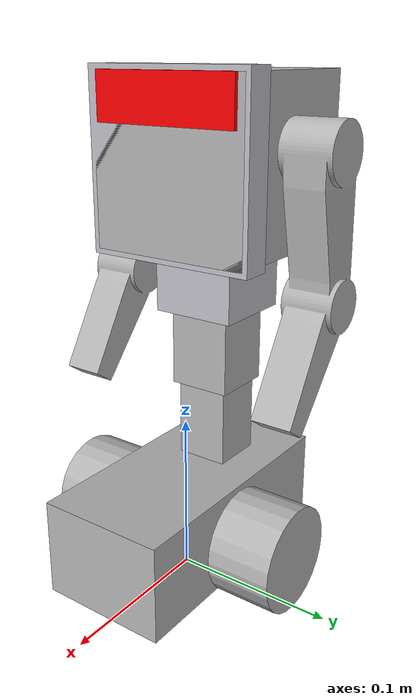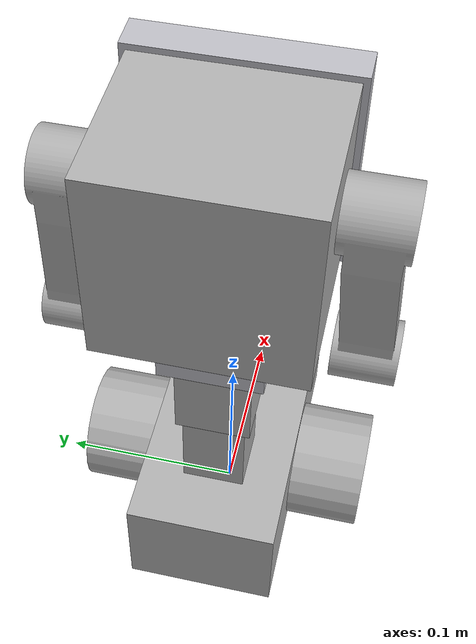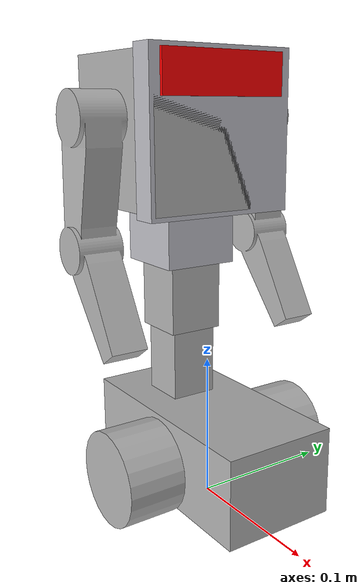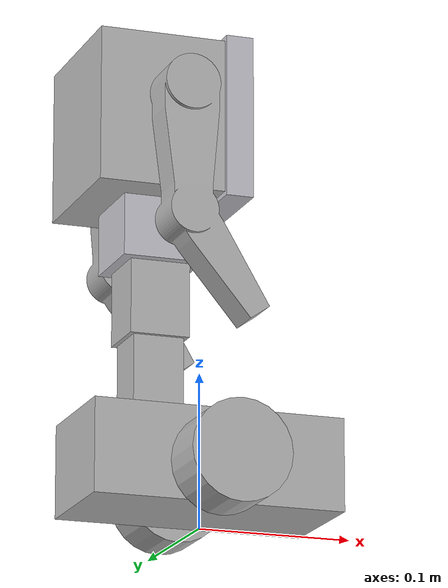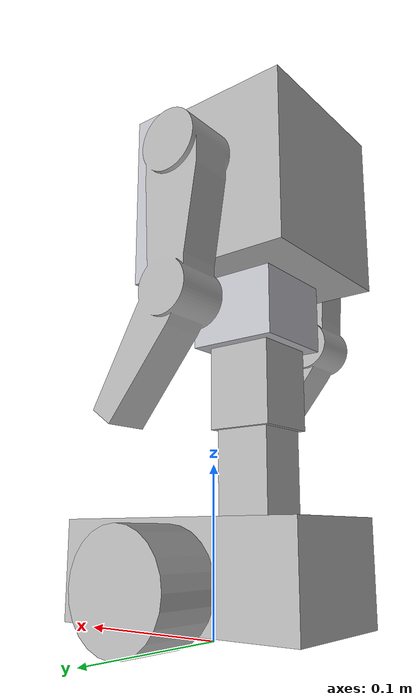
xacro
<?xml version="1.0" ?>
<robot name="ptbr" xmlns:xacro="http://www.ros.org/wiki/xacro">

<xacro:include filename="$(find ptbr)/urdf/materials.xacro" />
<xacro:include filename="$(find ptbr)/urdf/ptbr.ros2control" />
<xacro:include filename="$(find ptbr)/urdf/ptbr.gazebo" />

<xacro:include filename="$(find ptbr)/urdf/camera.xacro" />

<link name="base_footprint">

</link>

<joint name="base_link_joint" type="fixed">
  <origin xyz="0 0 0.0325"/>
  <parent link="base_footprint"/>
  <child link="base_link"/>

</joint>

<link name="base_link">
</link>

<joint name="base_joint" type="fixed">
  <parent link="base_link"/>
  <child link="base"/>
</joint>

<link name="base">
  <inertial>
    <origin xyz="0.006425674318858227 -0.00030771491577107806 0.038113735190444614" rpy="0 0 0"/>
    <mass value="10"/>
    <inertia ixx="0.018437" iyy="0.007171" izz="0.017545" ixy="0.0" iyz="-0.001397" ixz="-0.0"/>
  </inertial>
  <visual>
    <origin xyz="0 0 0.006" rpy="0 0 0"/>
    <geometry>
      <box size="0.1634 0.08 0.06"/>
    </geometry>
    <material name="silver"/>
  </visual>
  <visual>
    <origin xyz="-0.0327525 0.0 0.0575" rpy="0.0 0.0 0.0"/>
    <geometry>
      <box size="0.032895 0.032895 0.055"/>
    </geometry>
    <material name="silver"/>
  </visual>
  <collision>
    <origin xyz="0 0 0.006" rpy="0 0 0"/>
    <geometry>
      <box size="0.1634 0.08 0.06"/>
    </geometry>
    <material name="silver"/>
  </collision>
  <collision>
    <origin xyz="-0.0327525 0.0 0.0575" rpy="0.0 0.0 0.0"/>
    <geometry>
      <box size="0.032895 0.032895 0.055"/>
    </geometry>
    <material name="silver"/>
  </collision>
</link>

<joint name="head_joint" type="revolute">
  <origin xyz="-0.0327525 0 0.085" rpy="0 0 0"/>
  <parent link="base_link"/>
  <child link="head"/>
  <axis xyz="0.0 1.0 0.0"/>
  <limit upper="0.785399" lower="-0.785399" effort="100" velocity="100"/>
</joint>

<link name="head">
  <inertial>
    <origin xyz="2.850842288221471e-07 -0.001985837786485485 0.12158816571318953" rpy="0 0 0"/>
    <mass value="2"/>
    <inertia ixx="0.029478" iyy="0.029097" izz="0.015168" ixy="0.0" iyz="0.000325" ixz="-0.0"/>
  </inertial>
  <visual>
    <origin xyz="0 0 0.138" rpy="0 0 0"/>
    <geometry>
      <box size="0.1 0.1 0.1"/>
    </geometry>
    <material name="silver"/>
  </visual>

  <visual>
    <origin xyz="0.041 0 0.138" rpy="0.0 0.0 0.0"/>
    <geometry>
      <box size="0.018 0.106 0.106"/>
    </geometry>
  </visual>
  <visual>
    <origin xyz="0 0 0.024" rpy="0.0 0.0 0.0"/>
    <geometry>
      <box size="0.038895 0.038895 0.048"/>
    </geometry>
    <material name="silver"/>

  </visual>
  <visual>
    <origin xyz="0.0 0.0 0.068" rpy="0.0 0.0 0.0"/>
    <geometry>
      <box size="0.0525 0.0525 0.04"/>
    </geometry>
  </visual>
  <collision>
    <origin xyz="0 0 0.138" rpy="0 0 0"/>
    <geometry>
      <box size="0.1 0.1 0.1"/>
    </geometry>
  </collision>

  <collision>
    <origin xyz="0.041 0 0.138" rpy="0.0 0.0 0.0"/>
    <geometry>
      <box size="0.018 0.106 0.106"/>
    </geometry>
  </collision>
  <collision>
    <origin xyz="0 0 0.024" rpy="0.0 0.0 0.0"/>
    <geometry>
      <box size="0.038895 0.038895 0.048"/>
    </geometry>
  </collision>
  <collision>
    <origin xyz="0.0 0.0 0.068" rpy="0.0 0.0 0.0"/>
    <geometry>
      <box size="0.0525 0.0525 0.04"/>
    </geometry>
  </collision>
</link>

<joint name="right_wheel_joint" type="continuous">
  <origin xyz="0 -0.06 0" rpy="${pi/2} 0 0"/>
  <parent link="base_link"/>
  <child link="right_wheel"/>
  <axis xyz="0 0.0 -1"/>
  <limit effort="50000" velocity="10"/>
  <dynamics damping="1.0" friction="1.0"/>
</joint>

<link name="right_wheel">
  <inertial>
    <origin xyz="-0.019999714915771002 -2.0220914574015092e-07 2.2264549151551627e-07" rpy="0 0 0"/>
    <mass value="1"/>
    <inertia ixx="0.000659" iyy="0.000482" izz="0.000482" ixy="0.0" iyz="0.0" ixz="-0.0"/>
  </inertial>
  <visual>
    <origin xyz="0 0 0" rpy="0 0 0"/>
    <geometry>
      <cylinder radius="0.0325" length="0.04"/>
    </geometry>
    <material name="silver"/>
  </visual>
  <collision>
    <origin xyz="0 0 0" rpy="0 0 0"/>
    <geometry>
      <cylinder radius="0.0325" length="0.04"/>
    </geometry>
  </collision>
</link>

<joint name="left_wheel_joint" type="continuous">
  <origin xyz="0 0.06 0" rpy="-${pi/2} 0 0"/>
  <parent link="base_link"/>
  <child link="left_wheel"/>
  <axis xyz="0 0.0 1"/>
  <limit effort="50000" velocity="10"/>
  <dynamics damping="1.0" friction="1.0"/>
</joint>

<link name="left_wheel">
  <inertial>
    <origin xyz="-0.019999714915771002 -2.0220914574015092e-07 2.2264549151551627e-07" rpy="0 0 0"/>
    <mass value="1"/>
    <inertia ixx="0.000659" iyy="0.000482" izz="0.000482" ixy="0.0" iyz="0.0" ixz="-0.0"/>
  </inertial>
  <visual>
    <origin xyz="0 0 0" rpy="0 0 0"/>
    <geometry>
      <cylinder radius="0.0325" length="0.04"/>
    </geometry>
    <material name="silver"/>
  </visual>
  <collision>
    <origin xyz="0 0 0" rpy="0 0 0"/>
    <geometry>
      <cylinder radius="0.0325" length="0.04"/>
    </geometry>
  </collision>
</link>

<joint name="left_arm_joint" type="continuous">
  <origin xyz="0.0 0.05 0.146862" rpy="-${pi/2} 0 0"/>
  <parent link="head"/>
  <child link="left_arm"/>
  <axis xyz="0 0.0 -1"/>
</joint>

<link name="left_arm">
  <inertial>
    <origin xyz="0.018087977944126324 -0.005800896128886866 -0.056698307724850905" rpy="0 0 0"/>
    <mass value="0.1"/>
    <inertia ixx="0.002313" iyy="0.002182" izz="0.000268" ixy="8e-06" iyz="-0.00039" ixz="6.4e-05"/>
  </inertial>
  <visual>
    <origin xyz="0.041636 0.266278 -0.049692" rpy="-${pi/2} -${pi/2} ${pi}"/>
    <geometry>
      <mesh filename="package://ptbr/meshes/left_arm_1.stl" scale="0.001 0.001 0.001"/>
    </geometry>
    <material name="silver"/>
  </visual>
  <collision>
    <origin xyz="0.041636 0.266278 -0.049692" rpy="-${pi/2} -${pi/2} ${pi}"/>
    <geometry>
      <mesh filename="package://ptbr/meshes/left_arm_1.stl" scale="0.001 0.001 0.001"/>
    </geometry>
  </collision>
</link>

<joint name="right_arm_joint" type="continuous">
  <origin xyz="0.0 -0.05 0.146862" rpy="${pi/2} 0 0"/>
  <parent link="head"/>
  <child link="right_arm"/>
  <axis xyz="0 0.0 1"/>
</joint>

<link name="right_arm">
  <inertial>
    <origin xyz="-0.018087407770600646 -0.005810132869209922 -0.056697751450645734" rpy="0 0 0"/>
    <mass value="0.1"/>
    <inertia ixx="0.002313" iyy="0.002182" izz="0.000268" ixy="-8e-06" iyz="-0.00039" ixz="-6.4e-05"/>
  </inertial>
  <visual>
    <origin xyz="0.041636 -0.266278 -0.050308" rpy="${pi/2} ${pi/2} ${pi}"/>
    <geometry>
      <mesh filename="package://ptbr/meshes/right_arm_1.stl" scale="0.001 0.001 0.001"/>
    </geometry>
    <material name="silver"/>
  </visual>
  <collision>
    <origin xyz="0.041636 -0.266278 -0.050308" rpy="${pi/2} ${pi/2} ${pi}"/>
    <geometry>
      <mesh filename="package://ptbr/meshes/right_arm_1.stl" scale="0.001 0.001 0.001"/>
    </geometry>
  </collision>
</link>

</robot>

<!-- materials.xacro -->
<robot name="ptbr" xmlns:xacro="http://www.ros.org/wiki/xacro" >

<material name="silver">
  <color rgba="0.700 0.700 0.700 1.000"/>
</material>

<material name="red">
  <color rgba="1 0 0 1"/>
</material>

</robot>

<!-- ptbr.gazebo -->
<robot name="ptbr" xmlns:xacro="http://www.ros.org/wiki/xacro" >

<xacro:property name="body_color" value="Gazebo/Silver" />

<gazebo reference="base_link">
  <material>${body_color}</material>
  <mu1>0.2</mu1>
  <mu2>0.2</mu2>
  <self_collide>true</self_collide>
  <gravity>true</gravity>
</gazebo>

<gazebo reference="base">
  <material>${body_color}</material>
  <mu1>0.00002</mu1>
  <mu2>0.00002</mu2>
  <gravity>true</gravity>
</gazebo>

<gazebo reference="head">
  <material>${body_color}</material>
  <mu1>0.2</mu1>
  <mu2>0.2</mu2>
  <self_collide>true</self_collide>
</gazebo>

<gazebo reference="right_wheel">
  <material>${body_color}</material>
  <mu1>0.2</mu1>
  <mu2>0.2</mu2>
  <self_collide>true</self_collide>
</gazebo>

<gazebo reference="left_wheel">
  <material>${body_color}</material>
  <mu1>0.2</mu1>
  <mu2>0.2</mu2>
  <self_collide>true</self_collide>
</gazebo>

<gazebo reference="left_arm">
  <material>${body_color}</material>
  <mu1>0.2</mu1>
  <mu2>0.2</mu2>
  <self_collide>true</self_collide>
</gazebo>

<gazebo reference="right_arm">
  <material>${body_color}</material>
  <mu1>0.2</mu1>
  <mu2>0.2</mu2>
  <self_collide>true</self_collide>
</gazebo>

<gazebo>
  <plugin filename="gz-sim-diff-drive-system" name="gz::sim::systems::DiffDrive">
    <right_joint>right_wheel_joint</right_joint>
    <left_joint>left_wheel_joint</left_joint>

    <wheel_seperation>0.12</wheel_seperation>
    <wheel_diameter>0.065</wheel_diameter>

    <max_linear_acceleration>10</max_linear_acceleration>

    <topic>cmd_vel</topic>

    <frame_id>odom</frame_id>
    <child_frame_id>base_link</child_frame_id>
    <odom_topic>odom</odom_topic>
    <odom_publisher_frequency>30</odom_publisher_frequency>

    <tf_topic>/tf</tf_topic>
  </plugin>

  <plugin filename="gz-sim-joint-state-publisher-system" name="gz::sim::systems::JointStatePublisher">
    <topic>joint_states</topic>
    <joint_name>left_wheel_joint</joint_name>
    <joint_name>right_wheel_joint</joint_name>
  </plugin>
</gazebo>
</robot>

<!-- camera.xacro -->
<robot xmlns:xacro="http://www.ros.org/wiki/xacro" >

    <joint name="camera_joint" type="fixed">
        <origin xyz="0.051235 0.0 0.176" rpy="0.0 0.0 0"/>
        <parent link="head"/>
        <child link="camera_link"/>
        <axis xyz="0.0 0.0 0.0"/>
    </joint>

    <link name="camera_link">
        <visual>
            <origin xyz="0.0 0.0 -0.002" rpy="0.0 0.0 0.0"/>
            <geometry>
                <box size="0.00247 0.09093 0.027965"/>
            </geometry>
            <material name="red"/>
        </visual>
    </link>

</robot>
